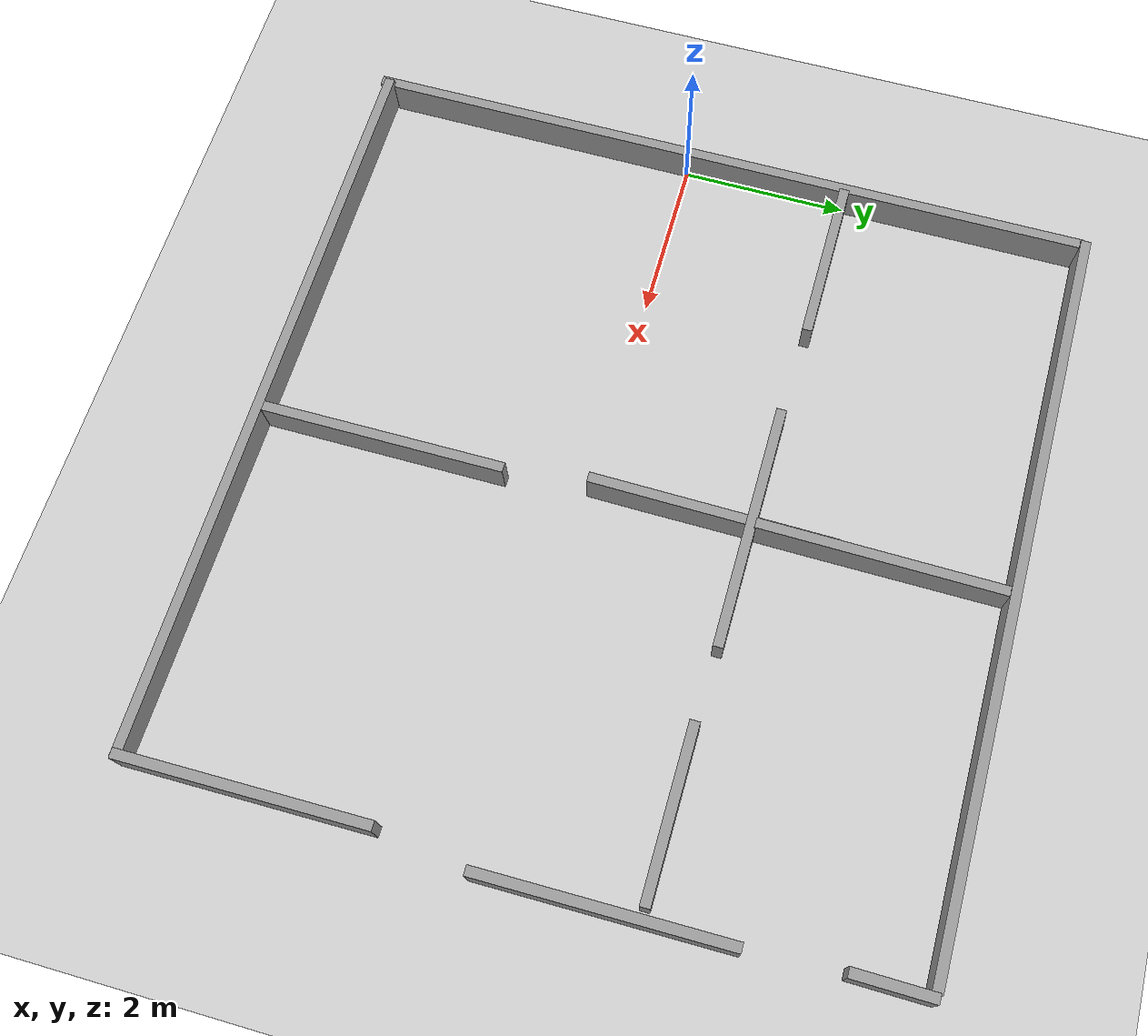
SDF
<sdf version="1.7">
 <world name="default">
  <light name="sun" type="directional">
   <pose>0 0 10 0 -0 0</pose>
   <diffuse>0.8 0.8 0.8 1</diffuse>
   <specular>0.2 0.2 0.2 1</specular>
   <attenuation>
    <range>1000</range>
    <constant>0.9</constant>
    <linear>0.01</linear>
    <quadratic>0.001</quadratic>
   </attenuation>
   <direction>-0.5 0.1 -0.9</direction>
   <spot><inner_angle>0</inner_angle><outer_angle>0</outer_angle><falloff>0</falloff></spot>
  </light>
  <model name="ground_plane">
   <static>1</static>
   <link name="link">
    <collision name="collision">
     <geometry><plane><normal>0 0 1</normal><size>100 100</size></plane></geometry>
     <surface><friction><ode><mu>100</mu><mu2>50</mu2></ode></friction></surface>
    </collision>
    <visual name="visual">
     <cast_shadows>0</cast_shadows>
     <geometry><plane><normal>0 0 1</normal><size>100 100</size></plane></geometry>
     <material>
      <script><uri>file://media/materials/scripts/gazebo.material</uri><name>Gazebo/Grey</name></script>
     </material>
    </visual>
   </link>
  </model>
  <gravity>0 0 -9.8</gravity>
  <magnetic_field>6e-06 2.3e-05 -4.2e-05</magnetic_field>
  <atmosphere type="adiabatic"/>
  <physics type="ode">
   <max_step_size>0.001</max_step_size>
   <real_time_factor>1</real_time_factor>
   <real_time_update_rate>1000</real_time_update_rate>
  </physics>
  <scene><ambient>0.4 0.4 0.4 1</ambient><background>0.7 0.7 0.7 1</background><shadows>1</shadows></scene>
  <spherical_coordinates>
   <surface_model>EARTH_WGS84</surface_model>
   <latitude_deg>0</latitude_deg>
   <longitude_deg>0</longitude_deg>
   <elevation>0</elevation>
   <heading_deg>0</heading_deg>
  </spherical_coordinates>
  <model name="wall">
   <link name="link">
    <inertial>
     <mass>1</mass>
     <inertia>
      <ixx>0.166667</ixx>
      <ixy>0</ixy>
      <ixz>0</ixz>
      <iyy>0.166667</iyy>
      <iyz>0</iyz>
      <izz>0.166667</izz>
     </inertia>
    </inertial>
    <visual name="visual">
     <geometry><box><size>0.120264 8.94791 0.469751</size></box></geometry>
     <material>
      <script><name>Gazebo/Grey</name><uri>file://media/materials/scripts/gazebo.material</uri></script>
      <shader type="pixel"/>
     </material>
    </visual>
    <collision name="collision">
     <geometry><box><size>0.120264 8.94791 0.469751</size></box></geometry>
     <surface>
      <friction>
       <ode><mu>1</mu><mu2>1</mu2><fdir1>0 0 0</fdir1><slip1>0</slip1><slip2>0</slip2></ode>
       <torsional>
        <coefficient>1</coefficient>
        <patch_radius>0</patch_radius>
        <surface_radius>0</surface_radius>
        <use_patch_radius>1</use_patch_radius>
        <ode><slip>0</slip></ode>
       </torsional>
      </friction>
      <bounce><restitution_coefficient>0</restitution_coefficient><threshold>1e+06</threshold></bounce>
      <contact>
       <collide_without_contact>0</collide_without_contact>
       <collide_without_contact_bitmask>1</collide_without_contact_bitmask>
       <collide_bitmask>1</collide_bitmask>
       <ode>
        <soft_cfm>0</soft_cfm>
        <soft_erp>0.2</soft_erp>
        <kp>1e+13</kp>
        <kd>1</kd>
        <max_vel>0.01</max_vel>
        <min_depth>0</min_depth>
       </ode>
       <bullet>
        <split_impulse>1</split_impulse>
        <split_impulse_penetration_threshold>-0.01</split_impulse_penetration_threshold>
        <soft_cfm>0</soft_cfm>
        <soft_erp>0.2</soft_erp>
        <kp>1e+13</kp>
        <kd>1</kd>
       </bullet>
      </contact>
     </surface>
    </collision>
   </link>
   <static>1</static>
   <pose>-0.031703 0.436973 0.219564 0.003622 0.015237 -0.004097</pose>
  </model>
  <model name="wall_clone">
   <link name="link">
    <inertial>
     <mass>1</mass>
     <inertia>
      <ixx>0.166667</ixx>
      <ixy>0</ixy>
      <ixz>0</ixz>
      <iyy>0.166667</iyy>
      <iyz>0</iyz>
      <izz>0.166667</izz>
     </inertia>
    </inertial>
    <visual name="visual">
     <geometry><box><size>0.120264 8.94791 0.469751</size></box></geometry>
     <material>
      <script><name>Gazebo/Grey</name><uri>file://media/materials/scripts/gazebo.material</uri></script>
      <shader type="pixel"/>
     </material>
    </visual>
    <collision name="collision">
     <geometry><box><size>0.120264 8.94791 0.469751</size></box></geometry>
     <surface>
      <friction>
       <ode><mu>1</mu><mu2>1</mu2><fdir1>0 0 0</fdir1><slip1>0</slip1><slip2>0</slip2></ode>
       <torsional>
        <coefficient>1</coefficient>
        <patch_radius>0</patch_radius>
        <surface_radius>0</surface_radius>
        <use_patch_radius>1</use_patch_radius>
        <ode><slip>0</slip></ode>
       </torsional>
      </friction>
      <bounce><restitution_coefficient>0</restitution_coefficient><threshold>1e+06</threshold></bounce>
      <contact>
       <collide_without_contact>0</collide_without_contact>
       <collide_without_contact_bitmask>1</collide_without_contact_bitmask>
       <collide_bitmask>1</collide_bitmask>
       <ode>
        <soft_cfm>0</soft_cfm>
        <soft_erp>0.2</soft_erp>
        <kp>1e+13</kp>
        <kd>1</kd>
        <max_vel>0.01</max_vel>
        <min_depth>0</min_depth>
       </ode>
       <bullet>
        <split_impulse>1</split_impulse>
        <split_impulse_penetration_threshold>-0.01</split_impulse_penetration_threshold>
        <soft_cfm>0</soft_cfm>
        <soft_erp>0.2</soft_erp>
        <kp>1e+13</kp>
        <kd>1</kd>
       </bullet>
      </contact>
     </surface>
    </collision>
   </link>
   <static>1</static>
   <pose>4.43377 -3.93577 0.206052 -0.015237 0.003622 -1.57495</pose>
  </model>
  <model name="wall_clone_clone">
   <link name="link">
    <inertial>
     <mass>1</mass>
     <inertia>
      <ixx>0.166667</ixx>
      <ixy>0</ixy>
      <ixz>0</ixz>
      <iyy>0.166667</iyy>
      <iyz>0</iyz>
      <izz>0.166667</izz>
     </inertia>
    </inertial>
    <visual name="visual">
     <geometry><box><size>0.120264 8.94791 0.469751</size></box></geometry>
     <material>
      <script><name>Gazebo/Grey</name><uri>file://media/materials/scripts/gazebo.material</uri></script>
      <shader type="pixel"/>
     </material>
    </visual>
    <collision name="collision">
     <geometry><box><size>0.120264 8.94791 0.469751</size></box></geometry>
     <surface>
      <friction>
       <ode><mu>1</mu><mu2>1</mu2><fdir1>0 0 0</fdir1><slip1>0</slip1><slip2>0</slip2></ode>
       <torsional>
        <coefficient>1</coefficient>
        <patch_radius>0</patch_radius>
        <surface_radius>0</surface_radius>
        <use_patch_radius>1</use_patch_radius>
        <ode><slip>0</slip></ode>
       </torsional>
      </friction>
      <bounce><restitution_coefficient>0</restitution_coefficient><threshold>1e+06</threshold></bounce>
      <contact>
       <collide_without_contact>0</collide_without_contact>
       <collide_without_contact_bitmask>1</collide_without_contact_bitmask>
       <collide_bitmask>1</collide_bitmask>
       <ode>
        <soft_cfm>0</soft_cfm>
        <soft_erp>0.2</soft_erp>
        <kp>1e+13</kp>
        <kd>1</kd>
        <max_vel>0.01</max_vel>
        <min_depth>0</min_depth>
       </ode>
       <bullet>
        <split_impulse>1</split_impulse>
        <split_impulse_penetration_threshold>-0.01</split_impulse_penetration_threshold>
        <soft_cfm>0</soft_cfm>
        <soft_erp>0.2</soft_erp>
        <kp>1e+13</kp>
        <kd>1</kd>
       </bullet>
      </contact>
     </surface>
    </collision>
   </link>
   <static>1</static>
   <pose>4.43315 4.93384 0.206052 -0.015237 0.003622 -1.57495</pose>
  </model>
  <model name="wall_3m">
   <link name="link">
    <inertial>
     <mass>0.327712</mass>
     <inertia>
      <ixx>0.240849</ixx>
      <ixy>0</ixy>
      <ixz>0</ixz>
      <iyy>0.00642123</iyy>
      <iyz>0</iyz>
      <izz>0.235218</izz>
     </inertia>
    </inertial>
    <visual name="visual">
     <geometry><box><size>0.120264 2.93234 0.469751</size></box></geometry>
     <material>
      <script><name>Gazebo/Grey</name><uri>file://media/materials/scripts/gazebo.material</uri></script>
      <shader type="pixel"/>
     </material>
    </visual>
    <collision name="collision">
     <geometry><box><size>0.120264 2.93234 0.469751</size></box></geometry>
     <surface>
      <friction>
       <ode><mu>1</mu><mu2>1</mu2><fdir1>0 0 0</fdir1><slip1>0</slip1><slip2>0</slip2></ode>
       <torsional>
        <coefficient>1</coefficient>
        <patch_radius>0</patch_radius>
        <surface_radius>0</surface_radius>
        <use_patch_radius>1</use_patch_radius>
        <ode><slip>0</slip></ode>
       </torsional>
      </friction>
      <bounce><restitution_coefficient>0</restitution_coefficient><threshold>1e+06</threshold></bounce>
      <contact>
       <collide_without_contact>0</collide_without_contact>
       <collide_without_contact_bitmask>1</collide_without_contact_bitmask>
       <collide_bitmask>1</collide_bitmask>
       <ode>
        <soft_cfm>0</soft_cfm>
        <soft_erp>0.2</soft_erp>
        <kp>1e+13</kp>
        <kd>1</kd>
        <max_vel>0.01</max_vel>
        <min_depth>0</min_depth>
       </ode>
       <bullet>
        <split_impulse>1</split_impulse>
        <split_impulse_penetration_threshold>-0.01</split_impulse_penetration_threshold>
        <soft_cfm>0</soft_cfm>
        <soft_erp>0.2</soft_erp>
        <kp>1e+13</kp>
        <kd>1</kd>
       </bullet>
      </contact>
     </surface>
    </collision>
   </link>
   <static>1</static>
   <pose>4.56342 1.92073 0.210327 -0.015237 0.003622 -1.57495</pose>
  </model>
  <model name="wall_3m_clone">
   <link name="link">
    <inertial>
     <mass>0.327712</mass>
     <inertia>
      <ixx>0.240849</ixx>
      <ixy>0</ixy>
      <ixz>0</ixz>
      <iyy>0.00642123</iyy>
      <iyz>0</iyz>
      <izz>0.235218</izz>
     </inertia>
    </inertial>
    <visual name="visual">
     <geometry><box><size>0.120264 2.93234 0.469751</size></box></geometry>
     <material>
      <script><name>Gazebo/Grey</name><uri>file://media/materials/scripts/gazebo.material</uri></script>
      <shader type="pixel"/>
     </material>
    </visual>
    <collision name="collision">
     <geometry><box><size>0.120264 2.93234 0.469751</size></box></geometry>
     <surface>
      <friction>
       <ode><mu>1</mu><mu2>1</mu2><fdir1>0 0 0</fdir1><slip1>0</slip1><slip2>0</slip2></ode>
       <torsional>
        <coefficient>1</coefficient>
        <patch_radius>0</patch_radius>
        <surface_radius>0</surface_radius>
        <use_patch_radius>1</use_patch_radius>
        <ode><slip>0</slip></ode>
       </torsional>
      </friction>
      <bounce><restitution_coefficient>0</restitution_coefficient><threshold>1e+06</threshold></bounce>
      <contact>
       <collide_without_contact>0</collide_without_contact>
       <collide_without_contact_bitmask>1</collide_without_contact_bitmask>
       <collide_bitmask>1</collide_bitmask>
       <ode>
        <soft_cfm>0</soft_cfm>
        <soft_erp>0.2</soft_erp>
        <kp>1e+13</kp>
        <kd>1</kd>
        <max_vel>0.01</max_vel>
        <min_depth>0</min_depth>
       </ode>
       <bullet>
        <split_impulse>1</split_impulse>
        <split_impulse_penetration_threshold>-0.01</split_impulse_penetration_threshold>
        <soft_cfm>0</soft_cfm>
        <soft_erp>0.2</soft_erp>
        <kp>1e+13</kp>
        <kd>1</kd>
       </bullet>
      </contact>
     </surface>
    </collision>
   </link>
   <static>1</static>
   <pose>4.64146 -2.42164 0.206052 0.00367 0.015225 -0.000955</pose>
  </model>
  <model name="wall_3m_clone_0">
   <link name="link">
    <inertial>
     <mass>0.327712</mass>
     <inertia>
      <ixx>0.240849</ixx>
      <ixy>0</ixy>
      <ixz>0</ixz>
      <iyy>0.00642123</iyy>
      <iyz>0</iyz>
      <izz>0.235218</izz>
     </inertia>
    </inertial>
    <visual name="visual">
     <geometry><box><size>0.120264 2.93234 0.469751</size></box></geometry>
     <material>
      <script><name>Gazebo/Grey</name><uri>file://media/materials/scripts/gazebo.material</uri></script>
      <shader type="pixel"/>
     </material>
    </visual>
    <collision name="collision">
     <geometry><box><size>0.120264 2.93234 0.469751</size></box></geometry>
     <surface>
      <friction>
       <ode><mu>1</mu><mu2>1</mu2><fdir1>0 0 0</fdir1><slip1>0</slip1><slip2>0</slip2></ode>
       <torsional>
        <coefficient>1</coefficient>
        <patch_radius>0</patch_radius>
        <surface_radius>0</surface_radius>
        <use_patch_radius>1</use_patch_radius>
        <ode><slip>0</slip></ode>
       </torsional>
      </friction>
      <bounce><restitution_coefficient>0</restitution_coefficient><threshold>1e+06</threshold></bounce>
      <contact>
       <collide_without_contact>0</collide_without_contact>
       <collide_without_contact_bitmask>1</collide_without_contact_bitmask>
       <collide_bitmask>1</collide_bitmask>
       <ode>
        <soft_cfm>0</soft_cfm>
        <soft_erp>0.2</soft_erp>
        <kp>1e+13</kp>
        <kd>1</kd>
        <max_vel>0.01</max_vel>
        <min_depth>0</min_depth>
       </ode>
       <bullet>
        <split_impulse>1</split_impulse>
        <split_impulse_penetration_threshold>-0.01</split_impulse_penetration_threshold>
        <soft_cfm>0</soft_cfm>
        <soft_erp>0.2</soft_erp>
        <kp>1e+13</kp>
        <kd>1</kd>
       </bullet>
      </contact>
     </surface>
    </collision>
   </link>
   <static>1</static>
   <pose>4.5141 1.46532 0.210327 -0.015237 0.003622 -0.006735</pose>
  </model>
  <model name="wall_3m_clone_0_clone">
   <link name="link">
    <inertial>
     <mass>0.327712</mass>
     <inertia>
      <ixx>0.240849</ixx>
      <ixy>0</ixy>
      <ixz>0</ixz>
      <iyy>0.00642123</iyy>
      <iyz>0</iyz>
      <izz>0.235218</izz>
     </inertia>
    </inertial>
    <visual name="visual">
     <geometry><box><size>0.120264 2.93234 0.469751</size></box></geometry>
     <material>
      <script><name>Gazebo/Grey</name><uri>file://media/materials/scripts/gazebo.material</uri></script>
      <shader type="pixel"/>
     </material>
    </visual>
    <collision name="collision">
     <geometry><box><size>0.120264 2.93234 0.469751</size></box></geometry>
     <surface>
      <friction>
       <ode><mu>1</mu><mu2>1</mu2><fdir1>0 0 0</fdir1><slip1>0</slip1><slip2>0</slip2></ode>
       <torsional>
        <coefficient>1</coefficient>
        <patch_radius>0</patch_radius>
        <surface_radius>0</surface_radius>
        <use_patch_radius>1</use_patch_radius>
        <ode><slip>0</slip></ode>
       </torsional>
      </friction>
      <bounce><restitution_coefficient>0</restitution_coefficient><threshold>1e+06</threshold></bounce>
      <contact>
       <collide_without_contact>0</collide_without_contact>
       <collide_without_contact_bitmask>1</collide_without_contact_bitmask>
       <collide_bitmask>1</collide_bitmask>
       <ode>
        <soft_cfm>0</soft_cfm>
        <soft_erp>0.2</soft_erp>
        <kp>1e+13</kp>
        <kd>1</kd>
        <max_vel>0.01</max_vel>
        <min_depth>0</min_depth>
       </ode>
       <bullet>
        <split_impulse>1</split_impulse>
        <split_impulse_penetration_threshold>-0.01</split_impulse_penetration_threshold>
        <soft_cfm>0</soft_cfm>
        <soft_erp>0.2</soft_erp>
        <kp>1e+13</kp>
        <kd>1</kd>
       </bullet>
      </contact>
     </surface>
    </collision>
   </link>
   <static>1</static>
   <pose>4.54501 3.42766 0.210327 -0.015237 0.003622 -0.006735</pose>
  </model>
  <model name="wall_2m">
   <link name="link">
    <inertial>
     <mass>0.223772</mass>
     <inertia>
      <ixx>0.0788765</ixx>
      <ixy>0</ixy>
      <ixz>0</ixz>
      <iyy>0.00438461</iyy>
      <iyz>0</iyz>
      <izz>0.0750313</izz>
     </inertia>
    </inertial>
    <pose>0.058217 -0.377225 -0.005198 0 -0 0</pose>
    <visual name="visual">
     <geometry><box><size>0.120264 2.00229 0.469751</size></box></geometry>
     <material>
      <script><name>Gazebo/Grey</name><uri>file://media/materials/scripts/gazebo.material</uri></script>
      <shader type="pixel"/>
     </material>
    </visual>
    <collision name="collision">
     <geometry><box><size>0.120264 2.00229 0.469751</size></box></geometry>
     <surface>
      <friction>
       <ode><mu>1</mu><mu2>1</mu2><fdir1>0 0 0</fdir1><slip1>0</slip1><slip2>0</slip2></ode>
       <torsional>
        <coefficient>1</coefficient>
        <patch_radius>0</patch_radius>
        <surface_radius>0</surface_radius>
        <use_patch_radius>1</use_patch_radius>
        <ode><slip>0</slip></ode>
       </torsional>
      </friction>
      <bounce><restitution_coefficient>0</restitution_coefficient><threshold>1e+06</threshold></bounce>
      <contact>
       <collide_without_contact>0</collide_without_contact>
       <collide_without_contact_bitmask>1</collide_without_contact_bitmask>
       <collide_bitmask>1</collide_bitmask>
       <ode>
        <soft_cfm>0</soft_cfm>
        <soft_erp>0.2</soft_erp>
        <kp>1e+13</kp>
        <kd>1</kd>
        <max_vel>0.01</max_vel>
        <min_depth>0</min_depth>
       </ode>
       <bullet>
        <split_impulse>1</split_impulse>
        <split_impulse_penetration_threshold>-0.01</split_impulse_penetration_threshold>
        <soft_cfm>0</soft_cfm>
        <soft_erp>0.2</soft_erp>
        <kp>1e+13</kp>
        <kd>1</kd>
       </bullet>
      </contact>
     </surface>
    </collision>
   </link>
   <static>1</static>
   <pose>1.36886 2.0353 0.210327 -0.015237 0.003622 -1.57495</pose>
  </model>
  <model name="wall_2m_clone">
   <link name="link">
    <inertial>
     <mass>0.223772</mass>
     <inertia>
      <ixx>0.0788765</ixx>
      <ixy>0</ixy>
      <ixz>0</ixz>
      <iyy>0.00438461</iyy>
      <iyz>0</iyz>
      <izz>0.0750313</izz>
     </inertia>
    </inertial>
    <pose>0.058217 -0.377225 -0.005198 0 -0 0</pose>
    <visual name="visual">
     <geometry><box><size>0.120264 2.00229 0.469751</size></box></geometry>
     <material>
      <script><name>Gazebo/Grey</name><uri>file://media/materials/scripts/gazebo.material</uri></script>
      <shader type="pixel"/>
     </material>
    </visual>
    <collision name="collision">
     <geometry><box><size>0.120264 2.00229 0.469751</size></box></geometry>
     <surface>
      <friction>
       <ode><mu>1</mu><mu2>1</mu2><fdir1>0 0 0</fdir1><slip1>0</slip1><slip2>0</slip2></ode>
       <torsional>
        <coefficient>1</coefficient>
        <patch_radius>0</patch_radius>
        <surface_radius>0</surface_radius>
        <use_patch_radius>1</use_patch_radius>
        <ode><slip>0</slip></ode>
       </torsional>
      </friction>
      <bounce><restitution_coefficient>0</restitution_coefficient><threshold>1e+06</threshold></bounce>
      <contact>
       <collide_without_contact>0</collide_without_contact>
       <collide_without_contact_bitmask>1</collide_without_contact_bitmask>
       <collide_bitmask>1</collide_bitmask>
       <ode>
        <soft_cfm>0</soft_cfm>
        <soft_erp>0.2</soft_erp>
        <kp>1e+13</kp>
        <kd>1</kd>
        <max_vel>0.01</max_vel>
        <min_depth>0</min_depth>
       </ode>
       <bullet>
        <split_impulse>1</split_impulse>
        <split_impulse_penetration_threshold>-0.01</split_impulse_penetration_threshold>
        <soft_cfm>0</soft_cfm>
        <soft_erp>0.2</soft_erp>
        <kp>1e+13</kp>
        <kd>1</kd>
       </bullet>
      </contact>
     </surface>
    </collision>
   </link>
   <static>1</static>
   <pose>8.26555 1.93518 0.210327 -0.015237 0.003622 -1.57495</pose>
  </model>
  <model name="wall_3m_clone_1">
   <link name="link">
    <inertial>
     <mass>0.327712</mass>
     <inertia>
      <ixx>0.240849</ixx>
      <ixy>0</ixy>
      <ixz>0</ixz>
      <iyy>0.00642123</iyy>
      <iyz>0</iyz>
      <izz>0.235218</izz>
     </inertia>
    </inertial>
    <visual name="visual">
     <geometry><box><size>0.120264 2.93234 0.469751</size></box></geometry>
     <material>
      <script><name>Gazebo/Grey</name><uri>file://media/materials/scripts/gazebo.material</uri></script>
      <shader type="pixel"/>
     </material>
    </visual>
    <collision name="collision">
     <geometry><box><size>0.120264 2.93234 0.469751</size></box></geometry>
     <surface>
      <friction>
       <ode><mu>1</mu><mu2>1</mu2><fdir1>0 0 0</fdir1><slip1>0</slip1><slip2>0</slip2></ode>
       <torsional>
        <coefficient>1</coefficient>
        <patch_radius>0</patch_radius>
        <surface_radius>0</surface_radius>
        <use_patch_radius>1</use_patch_radius>
        <ode><slip>0</slip></ode>
       </torsional>
      </friction>
      <bounce><restitution_coefficient>0</restitution_coefficient><threshold>1e+06</threshold></bounce>
      <contact>
       <collide_without_contact>0</collide_without_contact>
       <collide_without_contact_bitmask>1</collide_without_contact_bitmask>
       <collide_bitmask>1</collide_bitmask>
       <ode>
        <soft_cfm>0</soft_cfm>
        <soft_erp>0.2</soft_erp>
        <kp>1e+13</kp>
        <kd>1</kd>
        <max_vel>0.01</max_vel>
        <min_depth>0</min_depth>
       </ode>
       <bullet>
        <split_impulse>1</split_impulse>
        <split_impulse_penetration_threshold>-0.01</split_impulse_penetration_threshold>
        <soft_cfm>0</soft_cfm>
        <soft_erp>0.2</soft_erp>
        <kp>1e+13</kp>
        <kd>1</kd>
       </bullet>
      </contact>
     </surface>
    </collision>
   </link>
   <static>1</static>
   <pose>8.85891 -2.52434 0.196172 -0.003765 -0.015202 -3.13632</pose>
  </model>
  <model name="wall_3m_clone_1_clone">
   <link name="link">
    <inertial>
     <mass>0.327712</mass>
     <inertia>
      <ixx>0.240849</ixx>
      <ixy>0</ixy>
      <ixz>0</ixz>
      <iyy>0.00642123</iyy>
      <iyz>0</iyz>
      <izz>0.235218</izz>
     </inertia>
    </inertial>
    <visual name="visual">
     <geometry><box><size>0.120264 2.93234 0.469751</size></box></geometry>
     <material>
      <script><name>Gazebo/Grey</name><uri>file://media/materials/scripts/gazebo.material</uri></script>
      <shader type="pixel"/>
     </material>
    </visual>
    <collision name="collision">
     <geometry><box><size>0.120264 2.93234 0.469751</size></box></geometry>
     <surface>
      <friction>
       <ode><mu>1</mu><mu2>1</mu2><fdir1>0 0 0</fdir1><slip1>0</slip1><slip2>0</slip2></ode>
       <torsional>
        <coefficient>1</coefficient>
        <patch_radius>0</patch_radius>
        <surface_radius>0</surface_radius>
        <use_patch_radius>1</use_patch_radius>
        <ode><slip>0</slip></ode>
       </torsional>
      </friction>
      <bounce><restitution_coefficient>0</restitution_coefficient><threshold>1e+06</threshold></bounce>
      <contact>
       <collide_without_contact>0</collide_without_contact>
       <collide_without_contact_bitmask>1</collide_without_contact_bitmask>
       <collide_bitmask>1</collide_bitmask>
       <ode>
        <soft_cfm>0</soft_cfm>
        <soft_erp>0.2</soft_erp>
        <kp>1e+13</kp>
        <kd>1</kd>
        <max_vel>0.01</max_vel>
        <min_depth>0</min_depth>
       </ode>
       <bullet>
        <split_impulse>1</split_impulse>
        <split_impulse_penetration_threshold>-0.01</split_impulse_penetration_threshold>
        <soft_cfm>0</soft_cfm>
        <soft_erp>0.2</soft_erp>
        <kp>1e+13</kp>
        <kd>1</kd>
       </bullet>
      </contact>
     </surface>
    </collision>
   </link>
   <static>1</static>
   <pose>9.01173 1.46051 0.196172 -0.003765 -0.015202 -3.13632</pose>
  </model>
  <model name="wall_1">
   <link name="link">
    <inertial>
     <mass>0.104919</mass>
     <inertia>
      <ixx>0.00963536</ixx>
      <ixy>0</ixy>
      <ixz>0</ixz>
      <iyy>0.0020558</iyy>
      <iyz>0</iyz>
      <izz>0.00783247</izz>
     </inertia>
    </inertial>
    <pose>0.064305 -0.884421 -0.004848 0 -0 0</pose>
    <visual name="visual">
     <geometry><box><size>0.120264 0.93881 0.469751</size></box></geometry>
     <material>
      <script><name>Gazebo/Grey</name><uri>file://media/materials/scripts/gazebo.material</uri></script>
      <shader type="pixel"/>
     </material>
    </visual>
    <collision name="collision">
     <geometry><box><size>0.120264 0.93881 0.469751</size></box></geometry>
     <surface>
      <friction>
       <ode><mu>1</mu><mu2>1</mu2><fdir1>0 0 0</fdir1><slip1>0</slip1><slip2>0</slip2></ode>
       <torsional>
        <coefficient>1</coefficient>
        <patch_radius>0</patch_radius>
        <surface_radius>0</surface_radius>
        <use_patch_radius>1</use_patch_radius>
        <ode><slip>0</slip></ode>
       </torsional>
      </friction>
      <bounce><restitution_coefficient>0</restitution_coefficient><threshold>1e+06</threshold></bounce>
      <contact>
       <collide_without_contact>0</collide_without_contact>
       <collide_without_contact_bitmask>1</collide_without_contact_bitmask>
       <collide_bitmask>1</collide_bitmask>
       <ode>
        <soft_cfm>0</soft_cfm>
        <soft_erp>0.2</soft_erp>
        <kp>1e+13</kp>
        <kd>1</kd>
        <max_vel>0.01</max_vel>
        <min_depth>0</min_depth>
       </ode>
       <bullet>
        <split_impulse>1</split_impulse>
        <split_impulse_penetration_threshold>-0.01</split_impulse_penetration_threshold>
        <soft_cfm>0</soft_cfm>
        <soft_erp>0.2</soft_erp>
        <kp>1e+13</kp>
        <kd>1</kd>
       </bullet>
      </contact>
     </surface>
    </collision>
   </link>
   <static>1</static>
   <pose>8.88858 5.359 0.210327 0.002875 0.015396 -0.007808</pose>
  </model>
 </world>
</sdf>
